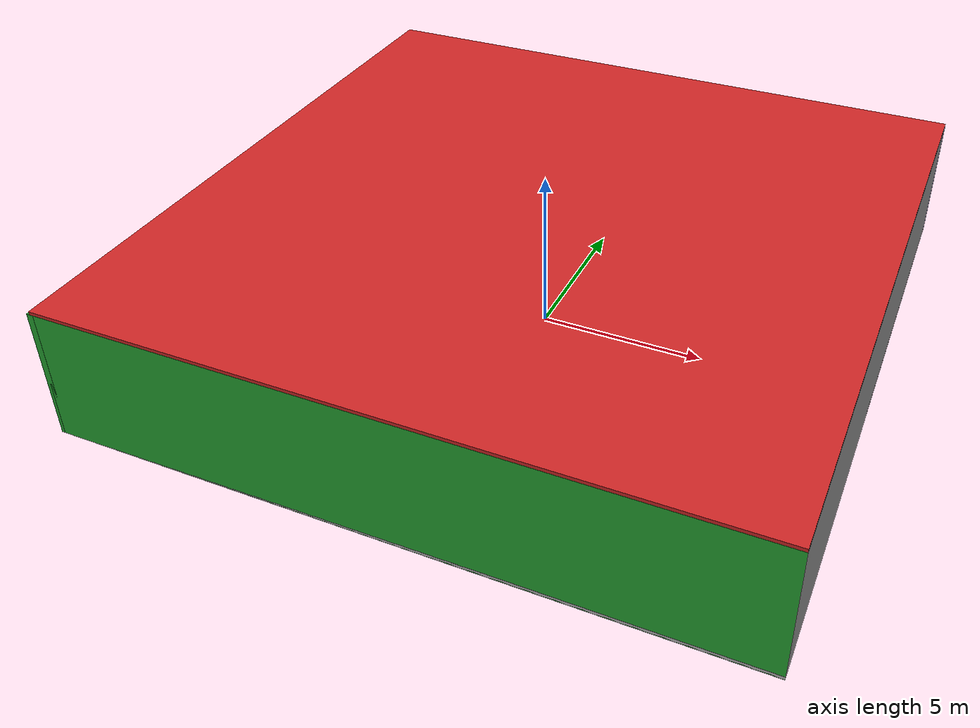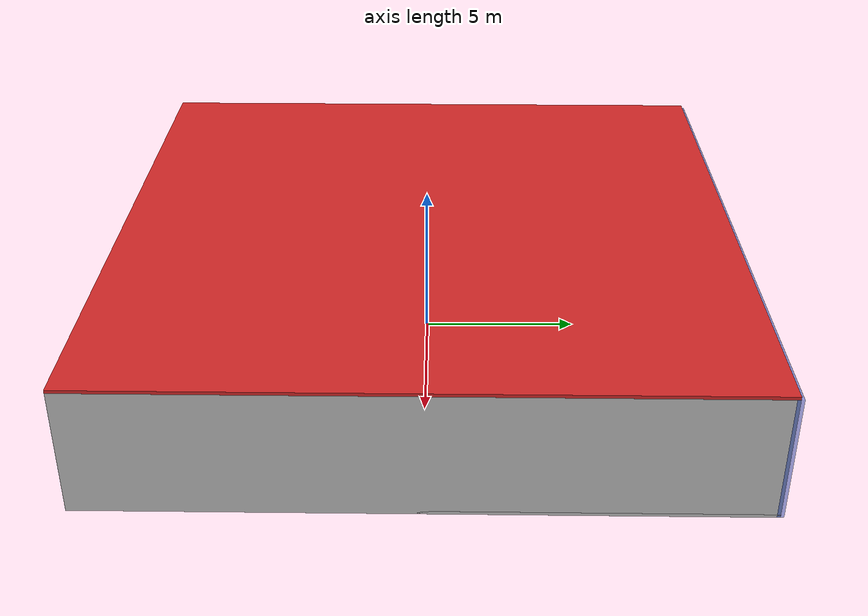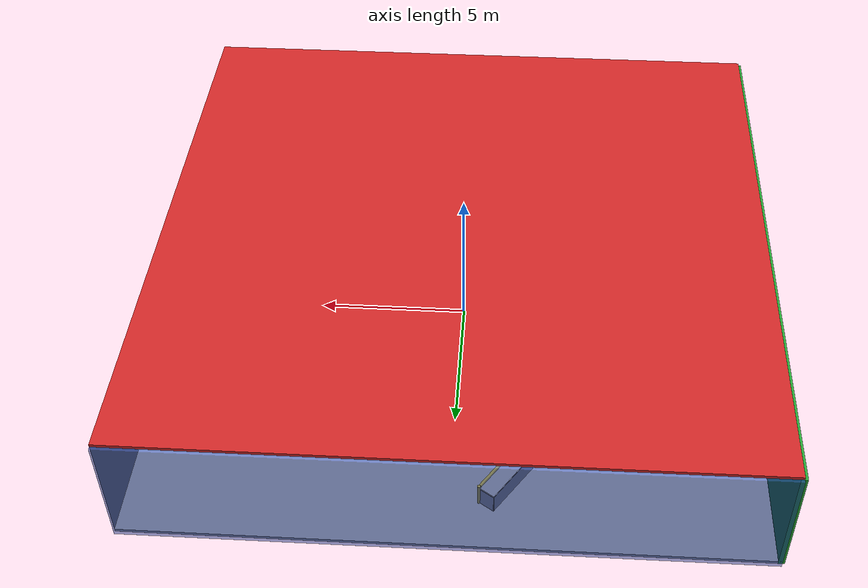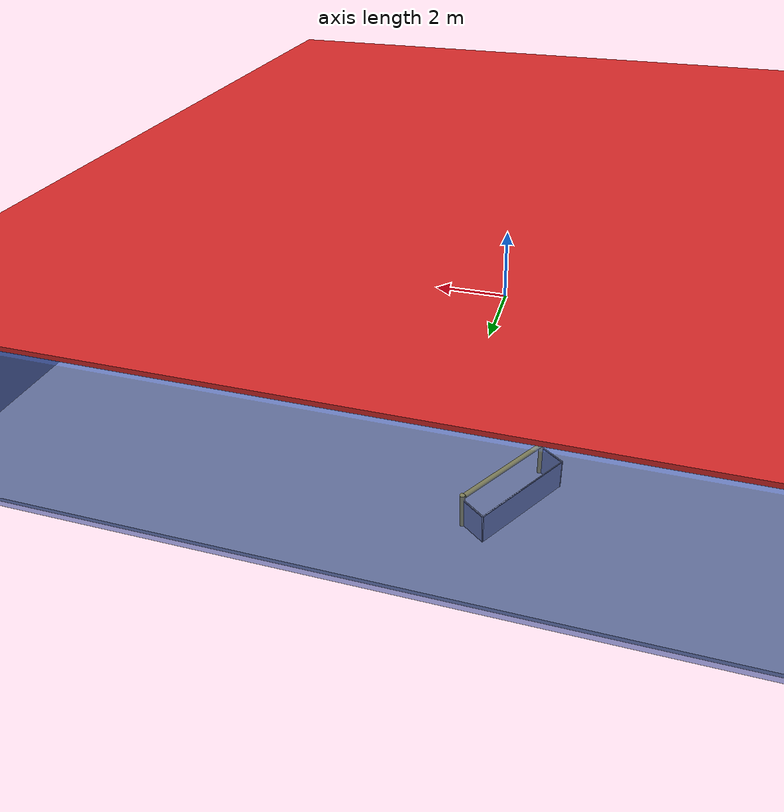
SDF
<sdf version="1.4">
 <world name="default">
  <physics type="ode">
   <max_step_size>0.001</max_step_size>
   <real_time_factor>1</real_time_factor>
   <real_time_update_rate>1000</real_time_update_rate>
   <gravity>0 0 -9.8</gravity>
  </physics>
  <scene><ambient>0.4 0.4 0.4 1</ambient><background>0.7 0.7 0.7 1</background><shadows>1</shadows></scene>
  <model name="Surrounding">
   <static>1</static>
   <link name="Ceiling">
    <collision name="Ceiling_Collision"><geometry><box><size>20 20 0.1</size></box></geometry></collision>
    <visual name="Ceiling_Visual">
     <geometry><box><size>20 20 0.1</size></box></geometry>
     <material>
      <script><uri>file://media/materials/scripts/gazebo.material</uri><name>Gazebo/RedGlow</name></script>
     </material>
    </visual>
    <pose>0 0 4.05 0 0 0</pose>
   </link>
   <link name="Wall_South">
    <collision name="Wall_South_Collision">
     <geometry><box><size>20 0 4</size></box></geometry>
     <pose>0 0 2 0 -0 0</pose>
    </collision>
    <visual name="Wall_South_Visual">
     <pose>0 0 2 0 -0 0</pose>
     <geometry><box><size>20 0 4</size></box></geometry>
     <material>
      <script><uri>file://media/materials/scripts/gazebo.material</uri><name>Gazebo/Green</name></script>
     </material>
    </visual>
    <velocity_decay><linear>0</linear><angular>0</angular></velocity_decay>
    <pose>0 -10 0 0 -0 0</pose>
   </link>
   <link name="Wall_East">
    <collision name="Wall_21_Collision">
     <geometry><box><size>20 0 4</size></box></geometry>
     <pose>0 0 2 0 -0 0</pose>
    </collision>
    <visual name="Wall_21_Visual">
     <pose>0 0 2 0 -0 0</pose>
     <geometry><box><size>20 0 4</size></box></geometry>
     <material>
      <script><uri>file://media/materials/scripts/gazebo.material</uri><name>Gazebo/JointAnchor</name></script>
     </material>
    </visual>
    <velocity_decay><linear>0</linear><angular>0</angular></velocity_decay>
    <pose>10 0 0 0 -0 1.5708</pose>
   </link>
   <link name="Wall_North">
    <collision name="Wall_22_Collision">
     <geometry><box><size>20 0.2 4</size></box></geometry>
     <pose>0 0 2 0 -0 0</pose>
    </collision>
    <visual name="Wall_22_Visual">
     <pose>0 0 2 0 -0 0</pose>
     <geometry><box><size>20 0.2 4</size></box></geometry>
     <material>
      <script><uri>file://media/materials/scripts/gazebo.material</uri><name>Gazebo/BlueTransparent</name></script>
     </material>
    </visual>
    <velocity_decay><linear>0</linear><angular>0</angular></velocity_decay>
    <pose>0 10 0 0 -0 0</pose>
   </link>
   <link name="Wall_West">
    <collision name="Wall_23_Collision">
     <geometry><box><size>20 0.2 4</size></box></geometry>
     <pose>0 0 2 0 -0 0</pose>
    </collision>
    <visual name="Wall_23_Visual">
     <pose>0 0 2 0 -0 0</pose>
     <geometry><box><size>20 0.2 4</size></box></geometry>
     <material>
      <script><uri>file://media/materials/scripts/gazebo.material</uri><name>Gazebo/GreenGlow</name></script>
     </material>
    </visual>
    <velocity_decay><linear>0</linear><angular>0</angular></velocity_decay>
    <pose>-10 0 0 0 0 -1.5708</pose>
   </link>
   <link name="Ground_link">
    <collision name="collision">
     <pose>0 0 .05 0 -0 0</pose>
     <geometry><box><size>20 20 0.1</size></box></geometry>
    </collision>
    <visual name="visual">
     <pose>0 0 .05 0 -0 0</pose>
     <geometry><box><size>20 20 0.1</size></box></geometry>
     <material>
      <script><uri>file://media/materials/scripts/gazebo.material</uri><name>Gazebo/JointAnchor</name></script>
     </material>
    </visual>
   </link>
   <static>1</static>
  </model>
  <spherical_coordinates>
   <surface_model>EARTH_WGS84</surface_model>
   <latitude_deg>0</latitude_deg>
   <longitude_deg>0</longitude_deg>
   <elevation>0</elevation>
   <heading_deg>0</heading_deg>
  </spherical_coordinates>
  <light name="lightball_0" type="diffuse">
   <diffuse>0.8 0.8 0.8 1</diffuse>
   <specular>0.2 0.2 0.2 1</specular>
   <attenuation>
    <range>100</range>
    <constant>0.7</constant>
    <linear>0.01</linear>
    <quadratic>0.001</quadratic>
   </attenuation>
   <direction>-0.5 0.1 -0.9</direction>
   <pose>0.798794403033 -1.75984350875 2.5488564294 0 0 0</pose>
  </light>
  <light name="lightball_1" type="diffuse">
   <diffuse>0.8 0.8 0.8 1</diffuse>
   <specular>0.2 0.2 0.2 1</specular>
   <attenuation>
    <range>100</range>
    <constant>0.7</constant>
    <linear>0.01</linear>
    <quadratic>0.001</quadratic>
   </attenuation>
   <direction>-0.5 0.1 -0.9</direction>
   <pose>3.88498547716 6.08868937542 0.62145977922 0 0 0</pose>
  </light>
  <light name="lightball_2" type="diffuse">
   <diffuse>0.8 0.8 0.8 1</diffuse>
   <specular>0.2 0.2 0.2 1</specular>
   <attenuation>
    <range>100</range>
    <constant>0.7</constant>
    <linear>0.01</linear>
    <quadratic>0.001</quadratic>
   </attenuation>
   <direction>-0.5 0.1 -0.9</direction>
   <pose>4.53525569594 -0.359239702176 1.34842968164 0 0 0</pose>
  </light>
  <light name="lightball_3" type="diffuse">
   <diffuse>0.8 0.8 0.8 1</diffuse>
   <specular>0.2 0.2 0.2 1</specular>
   <attenuation>
    <range>100</range>
    <constant>0.7</constant>
    <linear>0.01</linear>
    <quadratic>0.001</quadratic>
   </attenuation>
   <direction>-0.5 0.1 -0.9</direction>
   <pose>-3.87272016984 -2.32011236541 2.29364996925 0 0 0</pose>
  </light>
  <light name="lightball_4" type="diffuse">
   <diffuse>0.8 0.8 0.8 1</diffuse>
   <specular>0.2 0.2 0.2 1</specular>
   <attenuation>
    <range>100</range>
    <constant>0.7</constant>
    <linear>0.01</linear>
    <quadratic>0.001</quadratic>
   </attenuation>
   <direction>-0.5 0.1 -0.9</direction>
   <pose>2.47599758962 -5.62594178293 0.900297472463 0 0 0</pose>
  </light>
  <light name="lightball_5" type="diffuse">
   <diffuse>0.8 0.8 0.8 1</diffuse>
   <specular>0.2 0.2 0.2 1</specular>
   <attenuation>
    <range>100</range>
    <constant>0.7</constant>
    <linear>0.01</linear>
    <quadratic>0.001</quadratic>
   </attenuation>
   <direction>-0.5 0.1 -0.9</direction>
   <pose>0.191299424429 1.38361385994 3.51256581297 0 0 0</pose>
  </light>
  <light name="lightball_6" type="diffuse">
   <diffuse>0.8 0.8 0.8 1</diffuse>
   <specular>0.2 0.2 0.2 1</specular>
   <attenuation>
    <range>100</range>
    <constant>0.7</constant>
    <linear>0.01</linear>
    <quadratic>0.001</quadratic>
   </attenuation>
   <direction>-0.5 0.1 -0.9</direction>
   <pose>9.07967864513 8.23605004619 1.43676271773 0 0 0</pose>
  </light>
  <light name="lightball_7" type="diffuse">
   <diffuse>0.8 0.8 0.8 1</diffuse>
   <specular>0.2 0.2 0.2 1</specular>
   <attenuation>
    <range>100</range>
    <constant>0.7</constant>
    <linear>0.01</linear>
    <quadratic>0.001</quadratic>
   </attenuation>
   <direction>-0.5 0.1 -0.9</direction>
   <pose>0.0492520784887 -0.530723114509 2.81041158779 0 0 0</pose>
  </light>
  <light name="lightball_8" type="diffuse">
   <diffuse>0.8 0.8 0.8 1</diffuse>
   <specular>0.2 0.2 0.2 1</specular>
   <attenuation>
    <range>100</range>
    <constant>0.7</constant>
    <linear>0.01</linear>
    <quadratic>0.001</quadratic>
   </attenuation>
   <direction>-0.5 0.1 -0.9</direction>
   <pose>-6.76857836291 9.89377337133 2.76733431309 0 0 0</pose>
  </light>
  <light name="lightball_9" type="diffuse">
   <diffuse>0.8 0.8 0.8 1</diffuse>
   <specular>0.2 0.2 0.2 1</specular>
   <attenuation>
    <range>100</range>
    <constant>0.7</constant>
    <linear>0.01</linear>
    <quadratic>0.001</quadratic>
   </attenuation>
   <direction>-0.5 0.1 -0.9</direction>
   <pose>5.17399150081 -4.08133369706 3.6459140648 0 0 0</pose>
  </light>
  <light name="lightball_10" type="diffuse">
   <diffuse>0.8 0.8 0.8 1</diffuse>
   <specular>0.2 0.2 0.2 1</specular>
   <attenuation>
    <range>100</range>
    <constant>0.7</constant>
    <linear>0.01</linear>
    <quadratic>0.001</quadratic>
   </attenuation>
   <direction>-0.5 0.1 -0.9</direction>
   <pose>-5.32095321642 -4.03117849841 3.54264289998 0 0 0</pose>
  </light>
  <light name="lightball_11" type="diffuse">
   <diffuse>0.8 0.8 0.8 1</diffuse>
   <specular>0.2 0.2 0.2 1</specular>
   <attenuation>
    <range>100</range>
    <constant>0.7</constant>
    <linear>0.01</linear>
    <quadratic>0.001</quadratic>
   </attenuation>
   <direction>-0.5 0.1 -0.9</direction>
   <pose>0.114144669021 8.2134168611 0.985001721692 0 0 0</pose>
  </light>
  <light name="lightball_12" type="diffuse">
   <diffuse>0.8 0.8 0.8 1</diffuse>
   <specular>0.2 0.2 0.2 1</specular>
   <attenuation>
    <range>100</range>
    <constant>0.7</constant>
    <linear>0.01</linear>
    <quadratic>0.001</quadratic>
   </attenuation>
   <direction>-0.5 0.1 -0.9</direction>
   <pose>-5.59096247715 -8.919613943 1.62143486721 0 0 0</pose>
  </light>
  <include>
   <uri>model://textured_shapes</uri>
   <pose>-4.5437585621 -3.76988912482 0 0 0 0.712653051569</pose>
  </include>
  <include><uri>model://table</uri><pose>-1.87678775522 -6.97193901841 0 0 0 1.06863462017</pose></include>
  <include>
   <uri>model://robocup_3Dsim_goal</uri>
   <pose>-0.746228907743 4.4576577365 0 0 0 2.36206089004</pose>
  </include>
  <include>
   <uri>model://robocup_3Dsim_goal</uri>
   <pose>-1.5318930268 7.49130384012 0 0 0 2.5479634536</pose>
  </include>
  <include><uri>model://cabinet</uri><pose>1.7782697208 -7.43804158335 0 0 0 2.21644829216</pose></include>
  <include>
   <uri>model://robocup_3Dsim_goal</uri>
   <pose>1.74166992925 -5.00682932172 0 0 0 1.36255525429</pose>
  </include>
  <include><uri>model://table</uri><pose>4.72695973593 -0.929470255968 0 0 0 0.62054081616</pose></include>
  <include>
   <uri>model://robocup_3Dsim_goal</uri>
   <pose>4.57104698507 2.26987434259 0 0 0 0.253625748278</pose>
  </include>
  <include><uri>model://cabinet</uri><pose>7.88415098727 -5.05780360185 0 0 0 0.0908910127056</pose></include>
 </world>
</sdf>

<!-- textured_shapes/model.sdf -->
<sdf version="1.6">
  <model name="textured_shapes">
    <pose>0 0 0.5 0 0 0</pose>
    <link name="box">
      <pose>0 -1.5 0 0 0 0</pose>
      <collision name="collision">
        <geometry>
          <box>
            <size>1 1 1</size>
          </box>
        </geometry>
      </collision>
      <visual name="visual">
        <geometry>
          <box>
            <size>1 1 1</size>
          </box>
        </geometry>
        <material>
          <script>
            <uri>model://../model_source/models/textured_shapes/materials/scripts</uri>
            <uri>model://../model_source/models/textured_shapes/materials/textures</uri>
            <name>TexturedShape/Squares</name>
          </script>
        </material>
      </visual>
    </link>
    <link name="sphere">
      <collision name="collision">
        <geometry>
          <sphere>
            <radius>0.5</radius>
          </sphere>
        </geometry>
      </collision>
      <visual name="visual">
        <geometry>
          <sphere>
            <radius>0.5</radius>
          </sphere>
        </geometry>
        <material>
          <script>
            <uri>model://../model_source/models/textured_shapes/materials/scripts</uri>
            <uri>model://../model_source/models/textured_shapes/materials/textures</uri>
            <name>TexturedShape/Squares</name>
          </script>
        </material>
      </visual>
    </link>
    <link name="cylinder">
      <pose>0 1.5 0 0 0 0</pose>
      <collision name="collision">
        <geometry>
          <cylinder>
            <radius>0.5</radius>
            <length>1</length>
          </cylinder>
        </geometry>
      </collision>
      <visual name="visual">
        <geometry>
          <cylinder>
            <radius>0.5</radius>
            <length>1</length>
          </cylinder>
        </geometry>
        <material>
          <script>
            <uri>model://../model_source/models/textured_shapes/materials/scripts</uri>
            <uri>model://../model_source/models/textured_shapes/materials/textures</uri>
            <name>TexturedShape/Squares</name>
          </script>
        </material>
      </visual>
    </link>
  </model>
</sdf>

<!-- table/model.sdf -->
<sdf version="1.5">
  <model name="table">
    <static>true</static>
    <link name="link">
      <collision name="surface">
        <pose>0 0 1.0 0 0 0</pose>
        <geometry>
          <box>
            <size>1.5 0.8 0.03</size>
          </box>
        </geometry>
        <surface>
          <friction>
            <ode>
              <mu>0.6</mu>
              <mu2>0.6</mu2>
            </ode>
          </friction>
        </surface>
      </collision>
      <visual name="visual1">
        <pose>0 0 1.0 0 0 0</pose>
        <geometry>
          <box>
            <size>1.5 0.8 0.03</size>
          </box>
        </geometry>
        <material>
          <script>
            <uri>model://media/materials/scripts/gazebo.material</uri>
            <name>Gazebo/Wood</name>
          </script>
        </material>
      </visual>
      <collision name="front_left_leg">
        <pose>0.68 0.38 0.5 0 0 0</pose>
        <geometry>
          <cylinder>
            <radius>0.02</radius>
            <length>1.0</length>
          </cylinder>
        </geometry>
      </collision>
      <visual name="front_left_leg">
        <pose>0.68 0.38 0.5 0 0 0</pose>
        <geometry>
          <cylinder>
            <radius>0.02</radius>
            <length>1.0</length>
          </cylinder>
        </geometry>
        <material>
          <script>
            <uri>model://media/materials/scripts/gazebo.material</uri>
            <name>Gazebo/Grey</name>
          </script>
        </material>
      </visual>
      <collision name="front_right_leg">
        <pose>0.68 -0.38 0.5 0 0 0</pose>
        <geometry>
          <cylinder>
            <radius>0.02</radius>
            <length>1.0</length>
          </cylinder>
        </geometry>
      </collision>
      <visual name="front_right_leg">
        <pose>0.68 -0.38 0.5 0 0 0</pose>
        <geometry>
          <cylinder>
            <radius>0.02</radius>
            <length>1.0</length>
          </cylinder>
        </geometry>
        <material>
          <script>
            <uri>model://media/materials/scripts/gazebo.material</uri>
            <name>Gazebo/Grey</name>
          </script>
        </material>
      </visual>
      <collision name="back_right_leg">
        <pose>-0.68 -0.38 0.5 0 0 0</pose>
        <geometry>
          <cylinder>
            <radius>0.02</radius>
            <length>1.0</length>
          </cylinder>
        </geometry>
      </collision>
      <visual name="back_right_leg">
        <pose>-0.68 -0.38 0.5 0 0 0</pose>
        <geometry>
          <cylinder>
            <radius>0.02</radius>
            <length>1.0</length>
          </cylinder>
        </geometry>
        <material>
          <script>
            <uri>model://media/materials/scripts/gazebo.material</uri>
            <name>Gazebo/Grey</name>
          </script>
        </material>
      </visual>
      <collision name="back_left_leg">
        <pose>-0.68 0.38 0.5 0 0 0</pose>
        <geometry>
          <cylinder>
            <radius>0.02</radius>
            <length>1.0</length>
          </cylinder>
        </geometry>
      </collision>
      <visual name="back_left_leg">
        <pose>-0.68 0.38 0.5 0 0 0</pose>
        <geometry>
          <cylinder>
            <radius>0.02</radius>
            <length>1.0</length>
          </cylinder>
        </geometry>
        <material>
          <script>
            <uri>model://media/materials/scripts/gazebo.material</uri>
            <name>Gazebo/Grey</name>
          </script>
        </material>
      </visual>
    </link>
  </model>
</sdf>

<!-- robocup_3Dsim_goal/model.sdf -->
<sdf version="1.5">
  <model name="robocup_3d_goal">
    <static>true</static>
    <link name="left_post">
      <pose>0 1.05 0.45 0 0 0</pose>
      <collision name="collision">
        <geometry>
          <cylinder>
            <radius>0.05</radius>
            <length>0.9</length>
          </cylinder>
        </geometry>
      </collision>
      <visual name="visual">
        <geometry>
          <cylinder>
            <radius>0.05</radius>
            <length>0.9</length>
          </cylinder>
        </geometry>
        <material>
          <script>
            <uri>file://media/materials/scripts/gazebo.material</uri>
            <name>Gazebo/ZincYellow</name>
          </script>
        </material>
      </visual>
    </link>
    <link name="left_support_horiz_lower">
      <pose>0.30 1.05 0.01 0 0 0</pose>
      <collision name="collision">
        <geometry>
          <box>
            <size>0.50 0.02 0.02</size>
          </box>
        </geometry>
      </collision>
      <visual name="visual">
        <geometry>
          <box>
            <size>0.50 0.02 0.02</size>
          </box>
        </geometry>
        <material>
          <script>
            <uri>file://media/materials/scripts/gazebo.material</uri>
            <name>Gazebo/White</name>
          </script>
        </material>
      </visual>
    </link>
    <link name="left_support_horiz_upper">
      <pose>0.30 1.05 0.79 0 0 0</pose>
      <collision name="collision">
        <geometry>
          <box>
            <size>0.50 0.02 0.02</size>
          </box>
        </geometry>
      </collision>
      <visual name="visual">
        <geometry>
          <box>
            <size>0.50 0.02 0.02</size>
          </box>
        </geometry>
        <material>
          <script>
            <uri>file://media/materials/scripts/gazebo.material</uri>
            <name>Gazebo/White</name>
          </script>
        </material>
      </visual>
    </link>
    <link name="left_support_vertical">
      <pose>0.56 1.05 0.4 0 1.5708 0</pose>
      <collision name="collision">
        <geometry>
          <box>
            <size>0.80 0.02 0.02</size>
          </box>
        </geometry>
      </collision>
      <visual name="visual">
        <geometry>
          <box>
            <size>0.80 0.02 0.02</size>
          </box>
        </geometry>
        <material>
          <script>
            <uri>file://media/materials/scripts/gazebo.material</uri>
            <name>Gazebo/White</name>
          </script>
        </material>
      </visual>
    </link>
    <link name="right_support_horiz_lower">
      <pose>0.30 -1.05 0.01 0 0 0</pose>
      <collision name="collision">
        <geometry>
          <box>
            <size>0.50 0.02 0.02</size>
          </box>
        </geometry>
      </collision>
      <visual name="visual">
        <geometry>
          <box>
            <size>0.50 0.02 0.02</size>
          </box>
        </geometry>
        <material>
          <script>
            <uri>file://media/materials/scripts/gazebo.material</uri>
            <name>Gazebo/White</name>
          </script>
        </material>
      </visual>
    </link>
    <link name="right_support_horiz_upper">
      <pose>0.30 -1.05 0.79 0 0 0</pose>
      <collision name="collision">
        <geometry>
          <box>
            <size>0.50 0.02 0.02</size>
          </box>
        </geometry>
      </collision>
      <visual name="visual">
        <geometry>
          <box>
            <size>0.50 0.02 0.02</size>
          </box>
        </geometry>
        <material>
          <script>
            <uri>file://media/materials/scripts/gazebo.material</uri>
            <name>Gazebo/White</name>
          </script>
        </material>
      </visual>
    </link>
    <link name="right_support_vertical">
      <pose>0.56 -1.05 0.4 0 1.5708 0</pose>
      <collision name="collision">
        <geometry>
          <box>
            <size>0.80 0.02 0.02</size>
          </box>
        </geometry>
      </collision>
      <visual name="visual">
        <geometry>
          <box>
            <size>0.80 0.02 0.02</size>
          </box>
        </geometry>
        <material>
          <script>
            <uri>file://media/materials/scripts/gazebo.material</uri>
            <name>Gazebo/White</name>
          </script>
        </material>
      </visual>
    </link>
    <link name="center_support_horiz_lower">
      <pose>0.56 0 0.01 0 1.5708 0</pose>
      <collision name="collision">
        <geometry>
          <box>
            <size>0.02 2.08 0.02</size>
          </box>
        </geometry>
      </collision>
      <visual name="visual">
        <geometry>
          <box>
            <size>0.02 2.08 0.02</size>
          </box>
        </geometry>
        <material>
          <script>
            <uri>file://media/materials/scripts/gazebo.material</uri>
            <name>Gazebo/White</name>
          </script>
        </material>
      </visual>
    </link>
    <link name="center_support_horiz_upper">
      <pose>0.56 0 0.79 0 1.5708 0</pose>
      <collision name="collision">
        <geometry>
          <box>
            <size>0.02 2.08 0.02</size>
          </box>
        </geometry>
      </collision>
      <visual name="visual">
        <geometry>
          <box>
            <size>0.02 2.08 0.02</size>
          </box>
        </geometry>
        <material>
          <script>
            <uri>file://media/materials/scripts/gazebo.material</uri>
            <name>Gazebo/White</name>
          </script>
        </material>
      </visual>
    </link>
    <link name="right_post">
      <pose>0 -1.05 0.45 0 0 0</pose>
      <collision name="collision">
        <geometry>
          <cylinder>
            <radius>0.05</radius>
            <length>0.9</length>
          </cylinder>
        </geometry>
      </collision>
      <visual name="visual">
        <geometry>
          <cylinder>
            <radius>0.05</radius>
            <length>0.9</length>
          </cylinder>
        </geometry>
        <material>
          <script>
            <uri>file://media/materials/scripts/gazebo.material</uri>
            <name>Gazebo/ZincYellow</name>
          </script>
        </material>
      </visual>
    </link>
    <link name="crossbar">
      <pose>0 0 0.85 1.57 1.57 0</pose>
      <collision name="collision">
        <geometry>
          <cylinder>
            <radius>0.05</radius>
            <length>2.0</length>
          </cylinder>
        </geometry>
      </collision>
      <visual name="visual">
        <geometry>
          <cylinder>
            <radius>0.05</radius>
            <length>2.0</length>
          </cylinder>
        </geometry>
        <material>
          <script>
            <uri>file://media/materials/scripts/gazebo.material</uri>
            <name>Gazebo/ZincYellow</name>
          </script>
        </material>
      </visual>
    </link>
    <link name="center_net">
      <pose>0.56 0 0.40 0 0 0</pose>
      <collision name="collision">
        <geometry>
          <box>
            <size>0.01 2.1 0.80</size>
          </box>
        </geometry>
      </collision>
      <visual name="visual">
        <geometry>
          <box>
            <size>0.01 2.1 0.80</size>
          </box>
        </geometry>
        <material>
          <script>
            <uri>model://../model_source/models/robocup09_spl_field/materials/scripts/</uri>
            <uri>model://../model_source/models/robocup09_spl_field/materials/textures/</uri>
            <name>RoboCup/Net</name>
          </script>
        </material>
      </visual>
    </link>
    <link name="left_net">
      <pose>0.30 1.05 0.40 0 0 0</pose>
      <collision name="collision">
        <geometry>
          <box>
            <size>0.50 0.01 0.76</size>
          </box>
        </geometry>
      </collision>
      <visual name="visual">
        <geometry>
          <box>
            <size>0.50 0.01 0.76</size>
          </box>
        </geometry>
        <material>
          <script>
            <uri>model://../model_source/models/robocup09_spl_field/materials/scripts/</uri>
            <uri>model://../model_source/models/robocup09_spl_field/materials/textures/</uri>
            <name>RoboCup/Net</name>
          </script>
        </material>
      </visual>
    </link>
    <link name="right_net">
      <pose>0.30 -1.05 0.40 0 0 0</pose>
      <collision name="collision">
        <geometry>
          <box>
            <size>0.50 0.01 0.76</size>
          </box>
        </geometry>
      </collision>
      <visual name="visual">
        <geometry>
          <box>
            <size>0.50 0.01 0.76</size>
          </box>
        </geometry>
        <material>
          <script>
            <uri>model://../model_source/models/robocup09_spl_field/materials/scripts/</uri>
            <uri>model://../model_source/models/robocup09_spl_field/materials/textures/</uri>
            <name>RoboCup/Net</name>
          </script>
        </material>
      </visual>
    </link>
  </model>
</sdf>

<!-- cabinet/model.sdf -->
<sdf version="1.5">
  <model name="cabinet">
    <static>true</static>
    <link name="cabinet_bottom_plate">
      <inertial>
        <pose>0 0 -1 0 0 0</pose>
        <inertia>
          <ixx>2.050000</ixx>
          <ixy>0</ixy>
          <ixz>0</ixz>
          <iyy>2.050000</iyy>
          <iyz>0</iyz>
          <izz>2.050000</izz>
        </inertia>
        <mass>25.000000</mass>
      </inertial>
      <collision name="cabinet_bottom_plate_geom">
        <pose>0 0 0.010000 0 0 0</pose>
        <geometry>
          <box>
            <size>0.450000 0.450000 0.020000</size>
          </box>
        </geometry>
      </collision>
      <visual name="cabinet_bottom_plate_geom_visual">
        <pose>0 0 0.010000 0 0 0</pose>
        <geometry>
          <box>
            <size>0.450000 0.450000 0.020000</size>
          </box>
        </geometry>
        <material>
          <script>
            <uri>model://media/materials/scripts/gazebo.material</uri>
            <name>Gazebo/Wood</name>
          </script>
        </material>
      </visual>
      <collision name="cabinet_bottom_plate_geom_cabinet_back_plate">
        <pose>0.235000 0 0.510000 0 0 0</pose>
        <geometry>
          <box>
            <size>0.020000 0.450000 1.020000</size>
          </box>
        </geometry>
      </collision>
      <visual name="cabinet_bottom_plate_geom_cabinet_back_plate_visual">
        <pose>0.235000 0 0.510000 0 0 0</pose>
        <geometry>
          <box>
            <size>0.020000 0.450000 1.020000</size>
          </box>
        </geometry>
        <material>
          <script>
            <uri>model://media/materials/scripts/gazebo.material</uri>
            <name>Gazebo/Wood</name>
          </script>
        </material>
      </visual>
      <collision name="cabinet_bottom_plate_geom_cabinet_left_plate">
        <pose>0 0.235000 0.510000 0 0 0</pose>
        <geometry>
          <box>
            <size>0.450000 0.020000 1.020000</size>
          </box>
        </geometry>
      </collision>
      <visual name="cabinet_bottom_plate_geom_cabinet_left_plate_visual">
        <pose>0 0.235000 0.510000 0 0 0</pose>
        <geometry>
          <box>
            <size>0.450000 0.020000 1.020000</size>
          </box>
        </geometry>
        <material>
          <script>
            <uri>model://media/materials/scripts/gazebo.material</uri>
            <name>Gazebo/Wood</name>
          </script>
        </material>
      </visual>
      <collision name="cabinet_bottom_plate_geom_cabinet_middle_plate">
        <pose>0 0 0.510000 0 0 0</pose>
        <geometry>
          <box>
            <size>0.450000 0.450000 0.020000</size>
          </box>
        </geometry>
      </collision>
      <visual name="cabinet_bottom_plate_geom_cabinet_middle_plate_visual">
        <pose>0 0 0.510000 0 0 0</pose>
        <geometry>
          <box>
            <size>0.450000 0.450000 0.020000</size>
          </box>
        </geometry>
        <material>
          <script>
            <uri>model://media/materials/scripts/gazebo.material</uri>
            <name>Gazebo/Wood</name>
          </script>
        </material>
      </visual>
      <collision name="cabinet_bottom_plate_geom_cabinet_right_plate">
        <pose>0 -0.235000 0.510000 0 0 0</pose>
        <geometry>
          <box>
            <size>0.450000 0.020000 1.020000</size>
          </box>
        </geometry>
      </collision>
      <visual name="cabinet_bottom_plate_geom_cabinet_right_plate_visual">
        <pose>0 -0.235000 0.510000 0 0 0</pose>
        <geometry>
          <box>
            <size>0.450000 0.020000 1.020000</size>
          </box>
        </geometry>
        <material>
          <script>
            <uri>model://media/materials/scripts/gazebo.material</uri>
            <name>Gazebo/Wood</name>
          </script>
        </material>
      </visual>
      <collision name="cabinet_bottom_plate_geom_cabinet_top_plate">
        <pose>0 0 1.010000 0 0 0</pose>
        <geometry>
          <box>
            <size>0.450000 0.450000 0.020000</size>
          </box>
        </geometry>
      </collision>
      <visual name="cabinet_bottom_plate_geom_cabinet_top_plate_visual">
        <pose>0 0 1.010000 0 0 0</pose>
        <geometry>
          <box>
            <size>0.450000 0.450000 0.020000</size>
          </box>
        </geometry>
        <material>
          <script>
            <uri>model://media/materials/scripts/gazebo.material</uri>
            <name>Gazebo/Wood</name>
          </script>
        </material>
      </visual>
    </link>
  </model>
</sdf>
